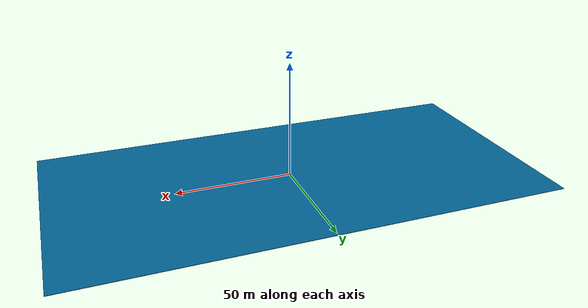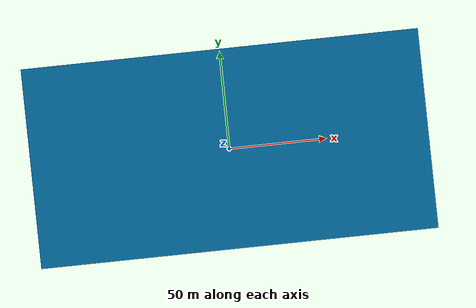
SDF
<?xml version="1.0" ?>
<sdf version="1.5">
  <model name="sea_plane">
    <static>true</static>
    <link name="link">
      <collision name="collision">
        <geometry>
          <box>
            <size>205 103 0.25</size>
          </box>
        </geometry>
      </collision>
      <visual name="visual">
        <cast_shadows>false</cast_shadows>
        <geometry>
          <box>
            <size>205 103 0.25</size>
          </box>
        </geometry>
        <material>
          <ambient>0.0 0.4 0.6 1.0</ambient>
          <diffuse>0.0 0.4 0.6 1.0</diffuse>
          <specular>0.2 0.2 0.2 1.0</specular>
          <pbr>
            <metal>
              <albedo_map>model://sea_plane/materials/textures/sea_plane.jpg</albedo_map>
            </metal>
          </pbr>
        </material>
      </visual>
    </link>
  </model>
</sdf>
